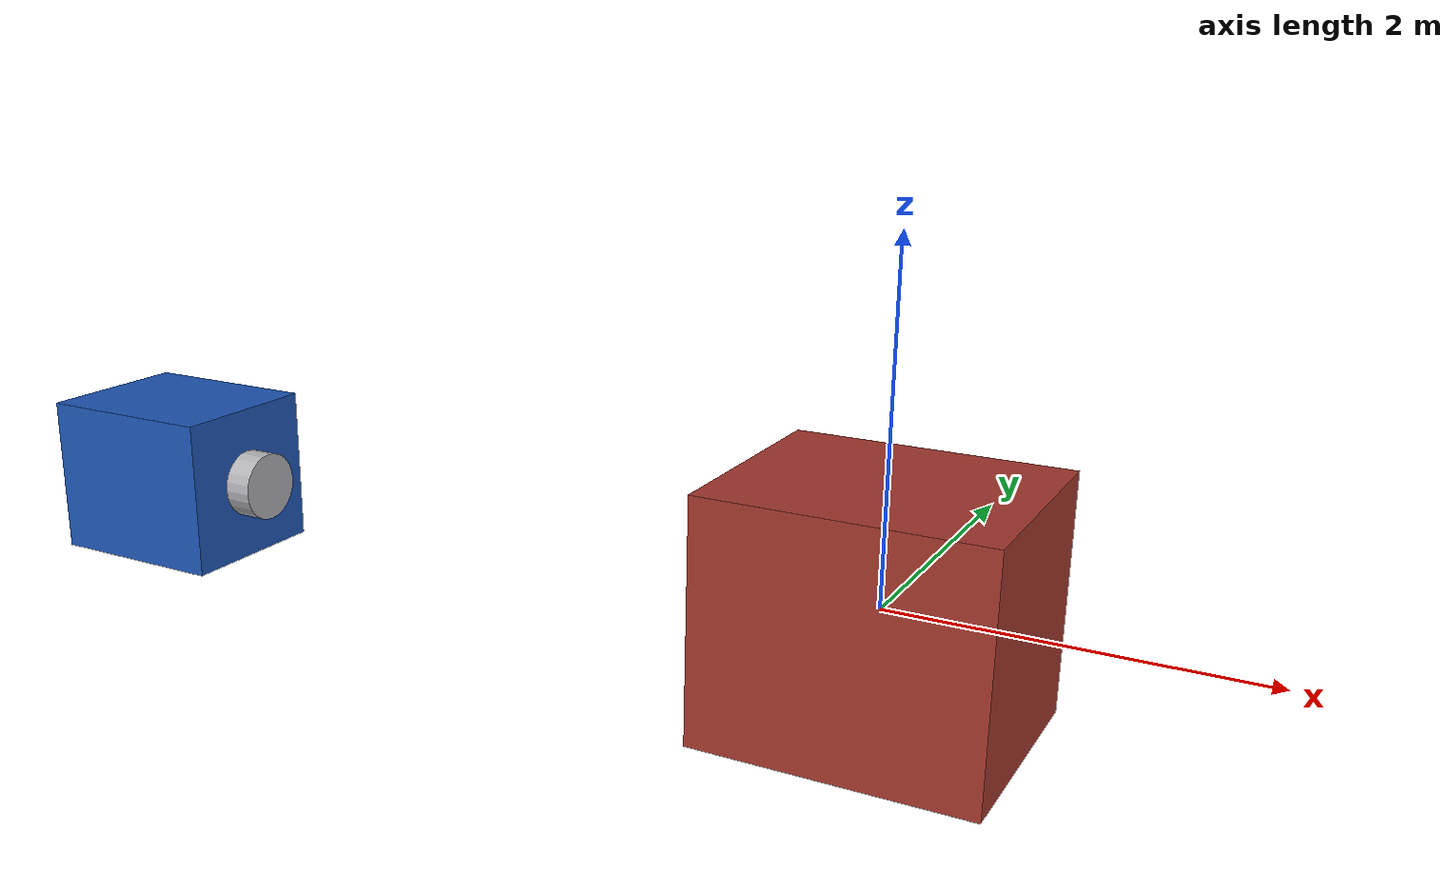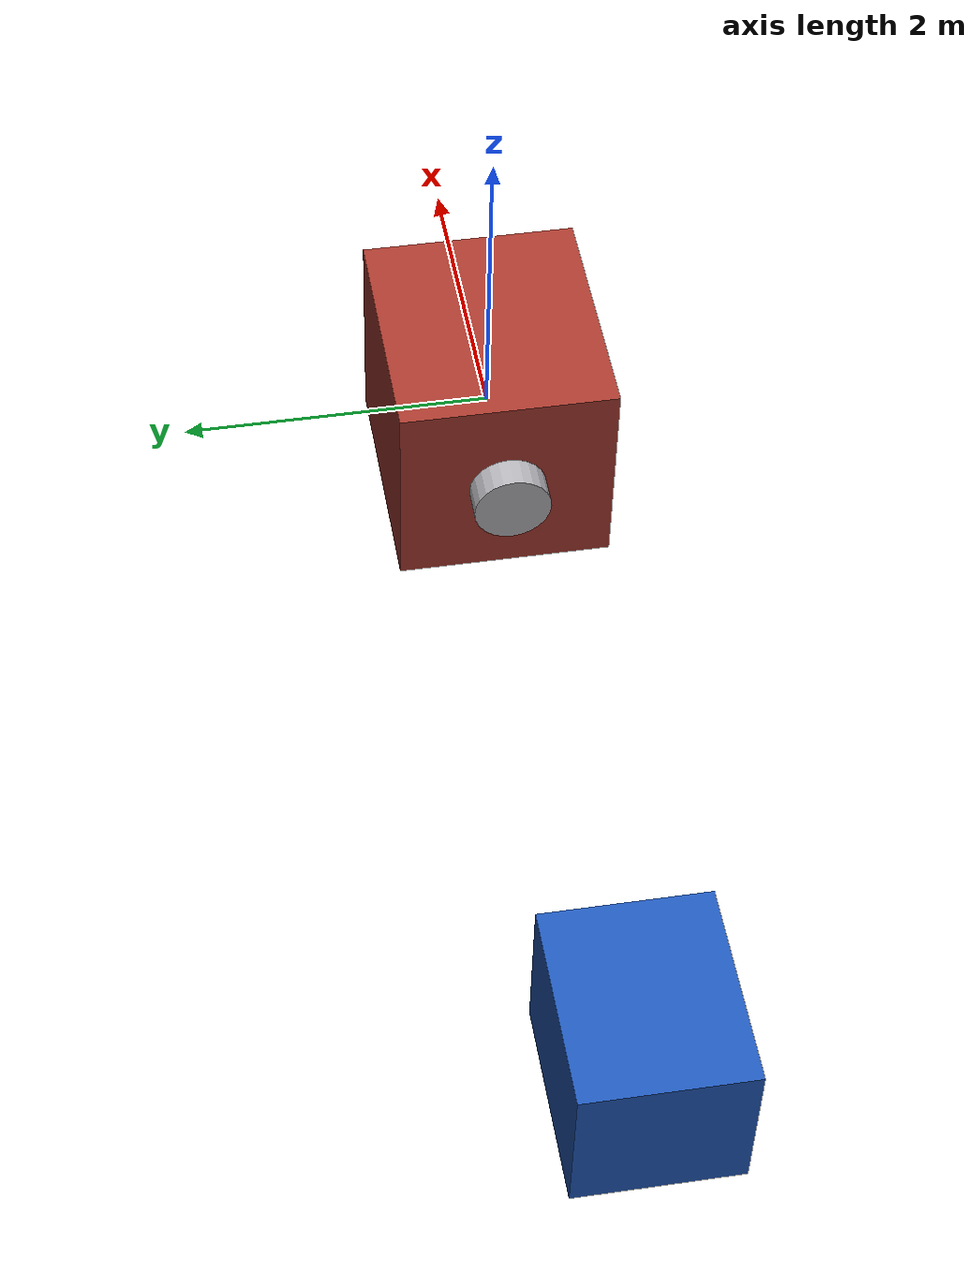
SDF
<?xml version="1.0"?>
<sdf version="1.8">
  <world name="docking">
    <gravity>0 0 0</gravity>
    <physics name="microgravity" type="ignored">
      <max_step_size>0.01</max_step_size>
      <real_time_factor>1.0</real_time_factor>
    </physics>

    <plugin filename="ignition-gazebo-physics-system"
            name="ignition::gazebo::systems::Physics" />
    <plugin filename="ignition-gazebo-user-commands-system"
            name="ignition::gazebo::systems::UserCommands" />
    <plugin filename="ignition-gazebo-scene-broadcaster-system"
            name="ignition::gazebo::systems::SceneBroadcaster" />

    <light name="sun" type="directional">
      <pose>0 0 10 0 0 0</pose>
      <diffuse>0.8 0.8 0.8 1</diffuse>
      <specular>0.2 0.2 0.2 1</specular>
      <direction>-0.4 0.2 -1</direction>
    </light>

    <model name="target">
      <static>true</static>
      <pose>0 0 0 0 0 3.14159265359</pose>
      <link name="body">
        <visual name="body_visual">
          <geometry><box><size>1.6 1.4 1.4</size></box></geometry>
          <material><ambient>0.65 0.22 0.18 1</ambient><diffuse>0.65 0.22 0.18 1</diffuse></material>
        </visual>
        <collision name="body_collision">
          <geometry><box><size>1.6 1.4 1.4</size></box></geometry>
        </collision>
        <visual name="port_visual">
          <pose>0.9 0 0 0 1.57079632679 0</pose>
          <geometry><cylinder><radius>0.25</radius><length>0.2</length></cylinder></geometry>
          <material><ambient>0.7 0.7 0.72 1</ambient><diffuse>0.7 0.7 0.72 1</diffuse></material>
        </visual>
      </link>
    </model>

    <model name="chaser">
      <static>false</static>
      <pose>-5 0 0 0 0 0</pose>
      <link name="body">
        <inertial>
          <mass>250</mass>
          <inertia><ixx>70</ixx><iyy>90</iyy><izz>90</izz></inertia>
        </inertial>
        <visual name="body_visual">
          <geometry><box><size>1.2 1.0 1.0</size></box></geometry>
          <material><ambient>0.12 0.34 0.72 1</ambient><diffuse>0.12 0.34 0.72 1</diffuse></material>
        </visual>
        <collision name="body_collision">
          <geometry><box><size>1.2 1.0 1.0</size></box></geometry>
        </collision>
        <visual name="port_visual">
          <pose>0.69 0 0 0 1.57079632679 0</pose>
          <geometry><cylinder><radius>0.22</radius><length>0.18</length></cylinder></geometry>
          <material><ambient>0.7 0.7 0.72 1</ambient><diffuse>0.7 0.7 0.72 1</diffuse></material>
        </visual>
      </link>
    </model>
  </world>
</sdf>
